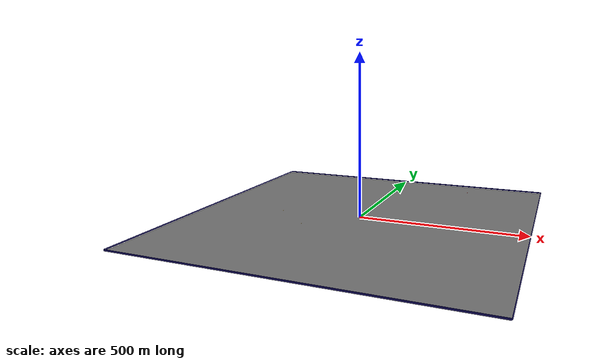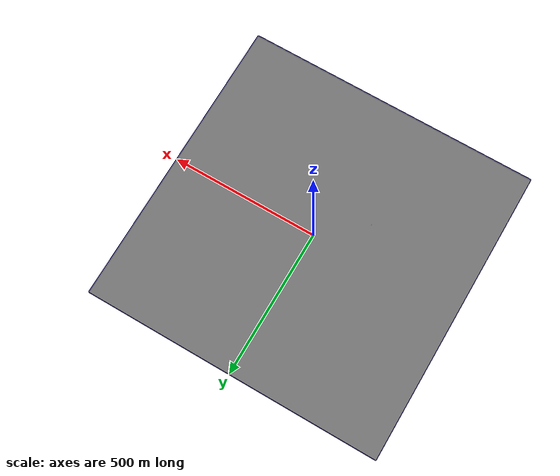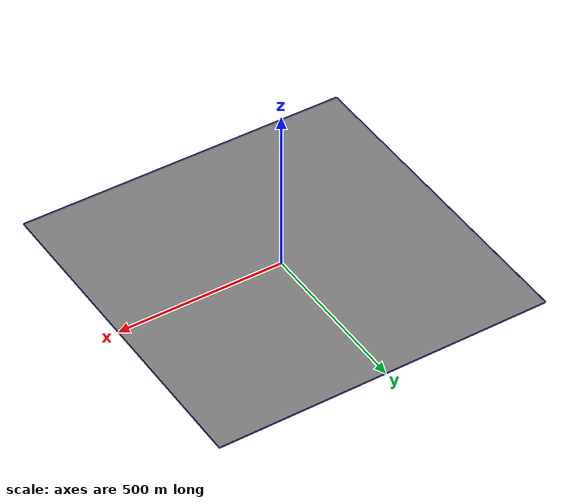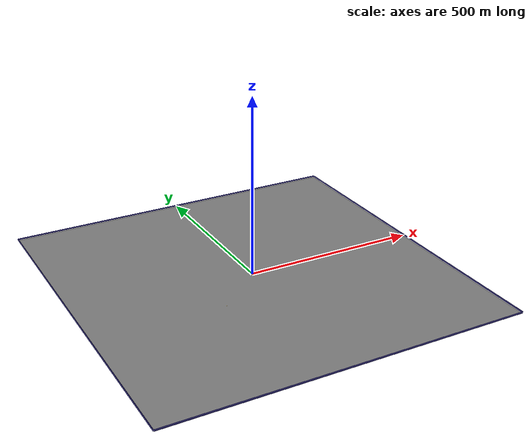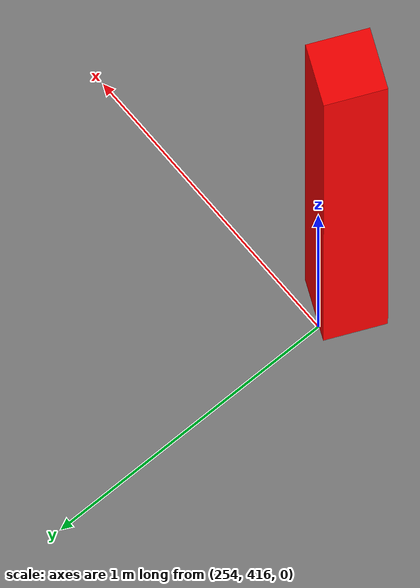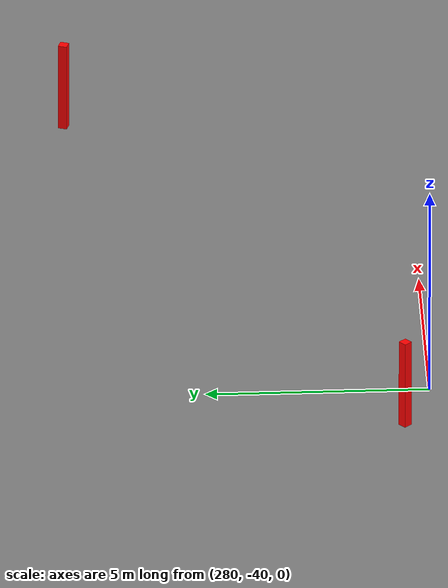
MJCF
<mujoco model="unnamed_model">
  <default>
    <default class="/" />
    <default class="border/" />
    <default class="border_1/" />
    <default class="border_2/" />
    <default class="border_3/" />
    <default class="agentplaceholder/" />
    <default class="placeholder_box/" />
    <default class="stone0/" />
    <default class="stone1/" />
    <default class="tree/" />
    <default class="tree_1/" />
  </default>
  <worldbody>
    <body name="border/">
      <body name="border/border" pos="0 501 2">
        <geom name="border/border_geom" class="border/" type="box" size="500 1 2" rgba="0.035000000000000003 0.016 0.28999999999999998 1" />
      </body>
    </body>
    <body name="border_1/">
      <body name="border_1/border" pos="0 -501 2">
        <geom name="border_1/border_geom" class="border_1/" type="box" size="500 1 2" rgba="0.035000000000000003 0.016 0.28999999999999998 1" />
      </body>
    </body>
    <body name="border_2/">
      <body name="border_2/border" pos="501 0 2">
        <geom name="border_2/border_geom" class="border_2/" type="box" size="1 500 2" rgba="0.035000000000000003 0.016 0.28999999999999998 1" />
      </body>
    </body>
    <body name="border_3/">
      <body name="border_3/border" pos="-501 0 2">
        <geom name="border_3/border_geom" class="border_3/" type="box" size="1 500 2" rgba="0.035000000000000003 0.016 0.28999999999999998 1" />
      </body>
    </body>
    <body euler="0 0 6.630813289182953" name="agentplaceholder/">
      <joint name="agentplaceholder/boxagent_freeJoint/" class="/" type="free" />
      <body name="agentplaceholder/agentplaceholder" pos="-250 0 3" euler="0 0 0">
        <geom name="agentplaceholder/boxagent_geom" class="agentplaceholder/" type="box" size="0.5 0.5 0.5" rgba="0.94899999999999995 0.74509999999999998 0.1333 1" euler="0 0 0" />
      </body>
    </body>
    <body name="placeholder_box/">
      <body name="placeholder_box/placeholder_box" pos="-138.13189999999997 -119.41989999999998 0.5" euler="0 0 130.46490117634482">
        <geom name="placeholder_box/box_geom" class="placeholder_box/" type="box" size="0.5 0.5 0.5" rgba="0.94899999999999995 0.74509999999999998 0.1333 1" euler="0 0 0" />
      </body>
    </body>
    <body name="stone0/">
      <body name="stone0/stone0" pos="278.47519999999997 -39.382600000000025 0.10000000000000001" euler="0 0 41.378407590948086">
        <geom name="stone0/stone_geom" class="stone0/" type="box" size="0.10000000000000001 0.10000000000000001 2" rgba="1 0 0 1" />
      </body>
    </body>
    <body name="stone1/">
      <body name="stone1/stone1" pos="211.50354999999999 423.06420000000003 0.10000000000000001" euler="0 0 147.33144178372527">
        <geom name="stone1/stone_geom" class="stone1/" type="box" size="0.10000000000000001 0.10000000000000001 2" rgba="1 0 0 1" />
      </body>
    </body>
    <body name="tree/">
      <body name="tree/tree" pos="254.0087 415.88310000000001 0.10000000000000001" euler="0 0 -114.20476977529412">
        <geom name="tree/tree_geom" class="tree/" type="box" size="0.10000000000000001 0.10000000000000001 2" rgba="1 0 0 1" />
      </body>
    </body>
    <body name="tree_1/">
      <body name="tree_1/tree" pos="292.38665000000003 -32.347700000000032 0.10000000000000001" euler="0 0 160.70495659556252">
        <geom name="tree_1/tree_geom" class="tree_1/" type="box" size="0.10000000000000001 0.10000000000000001 2" rgba="1 0 0 1" />
      </body>
    </body>
    <geom name="base_plane" class="/" type="plane" size="500 500 0.10000000000000001" />
  </worldbody>
</mujoco>
